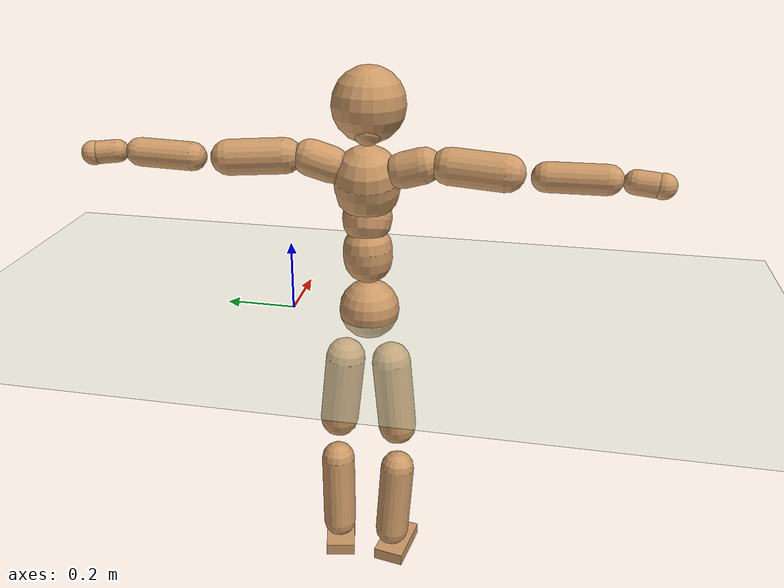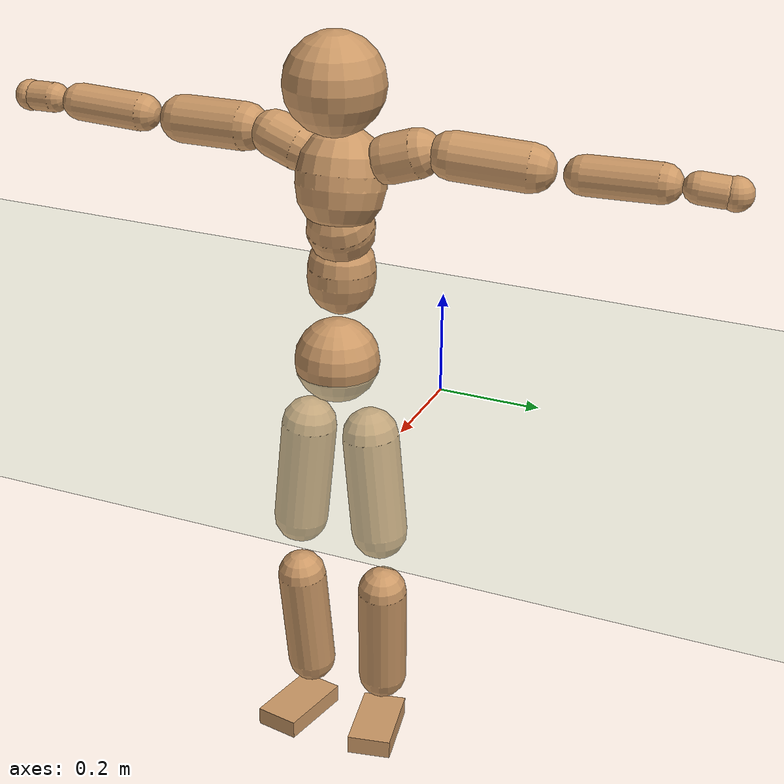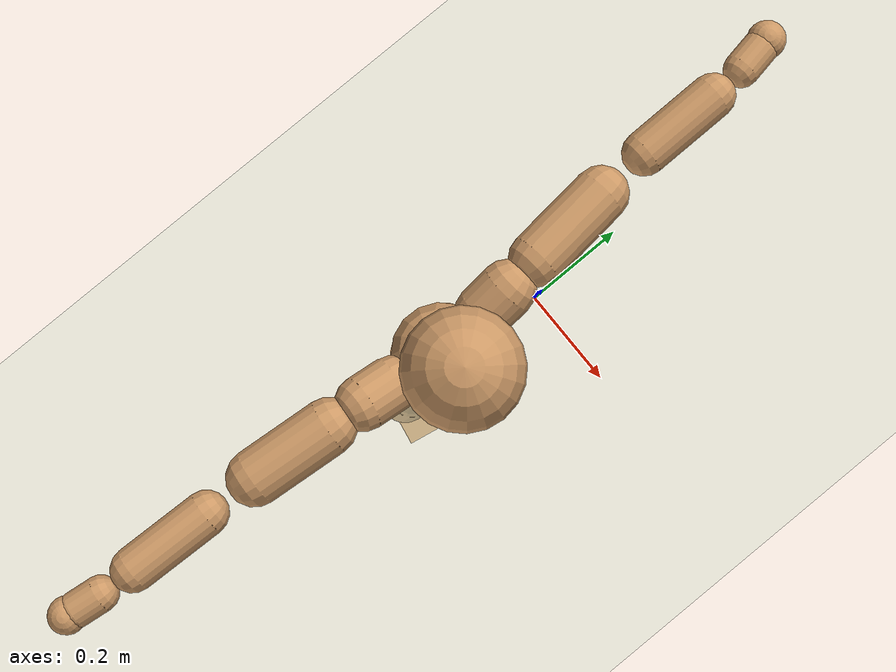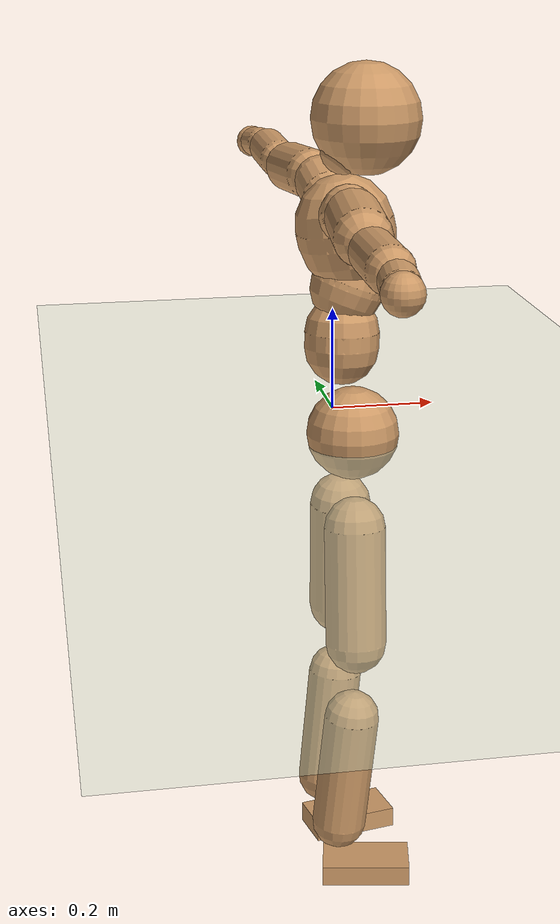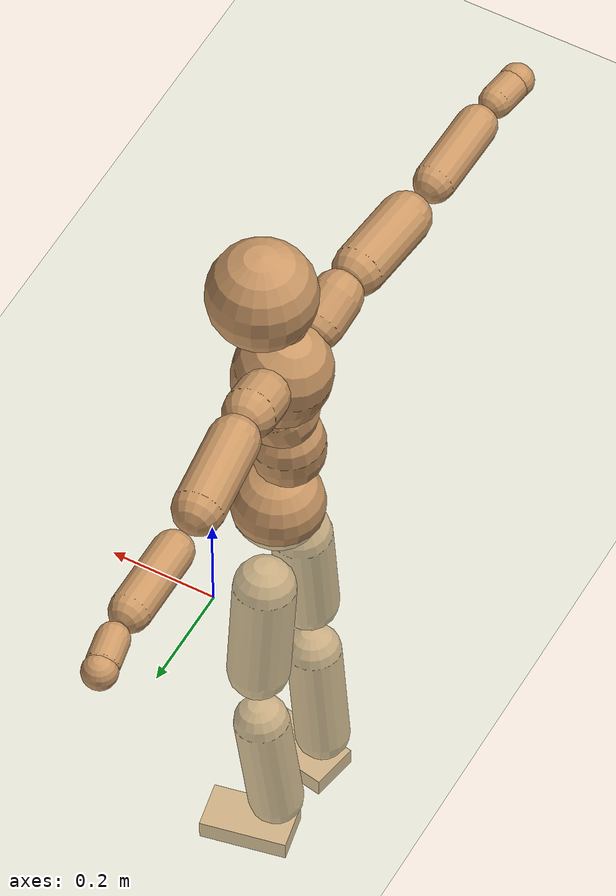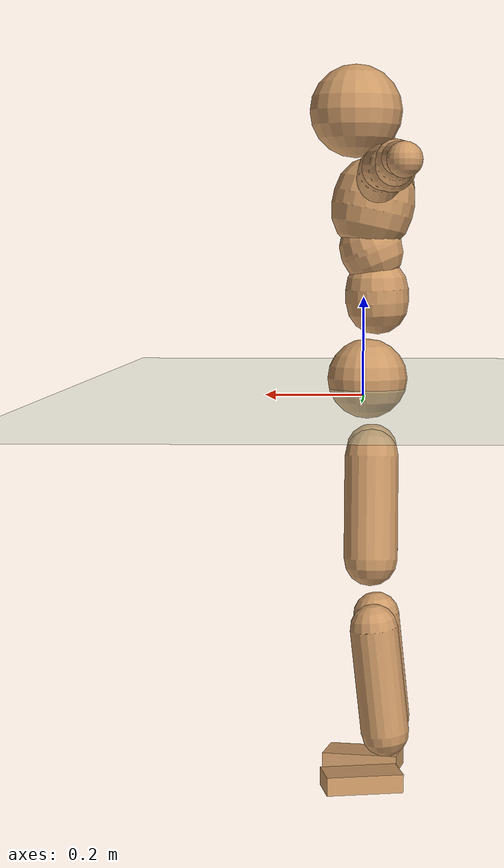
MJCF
<mujoco model="humanoid">
  <compiler coordinate="local"/>
  <default>
    <joint damping="0.0" armature="0.01" stiffness="0.0" limited="true"/>
    <geom conaffinity="1" condim="3" contype="7" margin="0.001" rgba="0.8 0.6 .4 1"/>
  </default>
  <asset>
    <texture type="skybox" builtin="gradient" rgb1=".4 .5 .6" rgb2="0 0 0" width="100" height="100"/>
    <texture builtin="flat" height="1278" mark="cross" markrgb="1 1 1" name="texgeom" random="0.01" rgb1="0.8 0.6 0.4" rgb2="0.8 0.6 0.4" type="cube" width="127"/>
    <texture builtin="checker" height="100" name="texplane" rgb1="0 0 0" rgb2="0.8 0.8 0.8" type="2d" width="100"/>
    <material name="MatPlane" reflectance="0.5" shininess="1" specular="1" texrepeat="60 60" texture="texplane"/>
    <material name="geom" texture="texgeom" texuniform="true"/>
  </asset>
  <worldbody>
    <light cutoff="100" diffuse="1 1 1" dir="-0 0 -1.3" directional="true" exponent="1" pos="0 0 1.3" specular=".1 .1 .1"/>
    <geom conaffinity="1" condim="3" name="floor" pos="0 0 0" rgba="0.8 0.9 0.8 1" size="100 100 .2" type="plane" material="MatPlane"/>
    <body name="Pelvis" pos="-0.0044 -0.2243 0.0196">
      <freejoint name="Pelvis"/>
      <geom type="sphere" contype="1" conaffinity="1" density="500" size="0.0860" pos="0.0000 0.0000 0.0000" name="Pelvis"/>
      <body name="L_Hip" pos="-0.0108 0.0613 -0.0878">
        <joint name="L_Hip_x" type="hinge" pos="0 0 0" axis="1 0 0" stiffness="800" damping="80" armature="0.02" range="-180.0000 180.0000"/>
        <joint name="L_Hip_y" type="hinge" pos="0 0 0" axis="0 1 0" stiffness="800" damping="80" armature="0.02" range="-180.0000 180.0000"/>
        <joint name="L_Hip_z" type="hinge" pos="0 0 0" axis="0 0 1" stiffness="800" damping="80" armature="0.02" range="-180.0000 180.0000"/>
        <geom type="capsule" contype="1" conaffinity="1" density="500" fromto="0.0006 0.0072 -0.0727 0.0022 0.0288 -0.2909" size="0.0577" name="L_Hip"/>
        <body name="L_Knee" pos="0.0028 0.036 -0.3636">
          <joint name="L_Knee_x" type="hinge" pos="0 0 0" axis="1 0 0" stiffness="800" damping="80" armature="0.02" range="-180.0000 180.0000"/>
          <joint name="L_Knee_y" type="hinge" pos="0 0 0" axis="0 1 0" stiffness="800" damping="80" armature="0.02" range="-180.0000 180.0000"/>
          <joint name="L_Knee_z" type="hinge" pos="0 0 0" axis="0 0 1" stiffness="800" damping="80" armature="0.02" range="-180.0000 180.0000"/>
          <geom type="capsule" contype="1" conaffinity="1" density="500" fromto="-0.0080 -0.0028 -0.0761 -0.0321 -0.0111 -0.3044" size="0.0515" name="L_Knee"/>
          <body name="L_Ankle" pos="-0.0401 -0.0139 -0.3805">
            <joint name="L_Ankle_x" type="hinge" pos="0 0 0" axis="1 0 0" stiffness="800" damping="80" armature="0.02" range="-180.0000 180.0000"/>
            <joint name="L_Ankle_y" type="hinge" pos="0 0 0" axis="0 1 0" stiffness="800" damping="80" armature="0.02" range="-180.0000 180.0000"/>
            <joint name="L_Ankle_z" type="hinge" pos="0 0 0" axis="0 0 1" stiffness="800" damping="80" armature="0.02" range="-180.0000 180.0000"/>
            <geom type="box" contype="1" conaffinity="1" density="500" pos="0.0581 0.0116 -0.0264" size="0.0828 0.0456 0.0198" quat="0.9951 0.0000 0.0000 0.0984" name="L_Ankle"/>
            <body name="L_Toe" pos="0.1162 0.0232 -0.0527">
              <joint name="L_Toe_x" type="hinge" pos="0 0 0" axis="1 0 0" stiffness="500" damping="50" armature="0.02" range="-180.0000 180.0000"/>
              <joint name="L_Toe_y" type="hinge" pos="0 0 0" axis="0 1 0" stiffness="500" damping="50" armature="0.02" range="-180.0000 180.0000"/>
              <joint name="L_Toe_z" type="hinge" pos="0 0 0" axis="0 0 1" stiffness="500" damping="50" armature="0.02" range="-180.0000 180.0000"/>
              <geom type="box" contype="1" conaffinity="1" density="500" pos="0.0000 0.0000 0.0258" size="0.0009 0.0023 0.001" quat="0.9945 0.0000 0.0000 0.1049" name="L_Toe"/>
            </body>
          </body>
        </body>
      </body>
      <body name="R_Hip" pos="-0.0085 -0.0603 -0.0863">
        <joint name="R_Hip_x" type="hinge" pos="0 0 0" axis="1 0 0" stiffness="800" damping="80" armature="0.02" range="-180.0000 180.0000"/>
        <joint name="R_Hip_y" type="hinge" pos="0 0 0" axis="0 1 0" stiffness="800" damping="80" armature="0.02" range="-180.0000 180.0000"/>
        <joint name="R_Hip_z" type="hinge" pos="0 0 0" axis="0 0 1" stiffness="800" damping="80" armature="0.02" range="-180.0000 180.0000"/>
        <geom type="capsule" contype="1" conaffinity="1" density="500" fromto="-0.0005 -0.0076 -0.0745 -0.0022 -0.0305 -0.2979" size="0.0567" name="R_Hip"/>
        <body name="R_Knee" pos="-0.0027 -0.0381 -0.3724">
          <joint name="R_Knee_x" type="hinge" pos="0 0 0" axis="1 0 0" stiffness="800" damping="80" armature="0.02" range="-180.0000 180.0000"/>
          <joint name="R_Knee_y" type="hinge" pos="0 0 0" axis="0 1 0" stiffness="800" damping="80" armature="0.02" range="-180.0000 180.0000"/>
          <joint name="R_Knee_z" type="hinge" pos="0 0 0" axis="0 0 1" stiffness="800" damping="80" armature="0.02" range="-180.0000 180.0000"/>
          <geom type="capsule" contype="1" conaffinity="1" density="500" fromto="-0.0078 0.0032 -0.0759 -0.0310 0.0129 -0.3037" size="0.0515" name="R_Knee"/>
          <body name="R_Ankle" pos="-0.0388 0.0161 -0.3796">
            <joint name="R_Ankle_x" type="hinge" pos="0 0 0" axis="1 0 0" stiffness="800" damping="80" armature="0.02" range="-180.0000 180.0000"/>
            <joint name="R_Ankle_y" type="hinge" pos="0 0 0" axis="0 1 0" stiffness="800" damping="80" armature="0.02" range="-180.0000 180.0000"/>
            <joint name="R_Ankle_z" type="hinge" pos="0 0 0" axis="0 0 1" stiffness="800" damping="80" armature="0.02" range="-180.0000 180.0000"/>
            <geom type="box" contype="1" conaffinity="1" density="500" pos="0.0598 -0.0110 -0.0225" size="0.0836 0.0467 0.0193" quat="0.9959 0.0000 0.0000 -0.0907" name="R_Ankle"/>
            <body name="R_Toe" pos="0.1195 -0.022 -0.0449">
              <joint name="R_Toe_x" type="hinge" pos="0 0 0" axis="1 0 0" stiffness="500" damping="50" armature="0.02" range="-180.0000 180.0000"/>
              <joint name="R_Toe_y" type="hinge" pos="0 0 0" axis="0 1 0" stiffness="500" damping="50" armature="0.02" range="-180.0000 180.0000"/>
              <joint name="R_Toe_z" type="hinge" pos="0 0 0" axis="0 0 1" stiffness="500" damping="50" armature="0.02" range="-180.0000 180.0000"/>
              <geom type="box" contype="1" conaffinity="1" density="500" pos="0.0000 0.0000 0.0233" size="0.0009 0.0023 0.001" quat="0.9967 0.0000 0.0000 -0.0813" name="R_Toe"/>
            </body>
          </body>
        </body>
      </body>
      <body name="Torso" pos="-0.0221 -0.0028 0.1061">
        <joint name="Torso_x" type="hinge" pos="0 0 0" axis="1 0 0" stiffness="1000" damping="100" armature="0.02" range="-180.0000 180.0000"/>
        <joint name="Torso_y" type="hinge" pos="0 0 0" axis="0 1 0" stiffness="1000" damping="100" armature="0.02" range="-180.0000 180.0000"/>
        <joint name="Torso_z" type="hinge" pos="0 0 0" axis="0 0 1" stiffness="1000" damping="100" armature="0.02" range="-180.0000 180.0000"/>
        <geom type="capsule" contype="1" conaffinity="1" density="500" fromto="0.0020 0.0042 0.0864 0.0013 0.0028 0.0576" size="0.0682" name="Torso"/>
        <body name="Spine" pos="0.0033 0.007 0.1441">
          <joint name="Spine_x" type="hinge" pos="0 0 0" axis="1 0 0" stiffness="1000" damping="100" armature="0.02" range="-180.0000 180.0000"/>
          <joint name="Spine_y" type="hinge" pos="0 0 0" axis="0 1 0" stiffness="1000" damping="100" armature="0.02" range="-180.0000 180.0000"/>
          <joint name="Spine_z" type="hinge" pos="0 0 0" axis="0 0 1" stiffness="1000" damping="100" armature="0.02" range="-180.0000 180.0000"/>
          <geom type="capsule" contype="1" conaffinity="1" density="500" fromto="0.0129 0.0011 0.0322 0.0086 0.0007 0.0215" size="0.0676" name="Spine"/>
          <body name="Chest" pos="0.0214 0.0019 0.0537">
            <joint name="Chest_x" type="hinge" pos="0 0 0" axis="1 0 0" stiffness="1000" damping="100" armature="0.02" range="-180.0000 180.0000"/>
            <joint name="Chest_y" type="hinge" pos="0 0 0" axis="0 1 0" stiffness="1000" damping="100" armature="0.02" range="-180.0000 180.0000"/>
            <joint name="Chest_z" type="hinge" pos="0 0 0" axis="0 0 1" stiffness="1000" damping="100" armature="0.02" range="-180.0000 180.0000"/>
            <geom type="capsule" contype="1" conaffinity="1" density="500" fromto="-0.0179 -0.0015 0.0842 -0.0119 -0.0010 0.0561" size="0.0888" name="Chest"/>
            <body name="Neck" pos="-0.0303 -0.0045 0.1992">
              <joint name="Neck_x" type="hinge" pos="0 0 0" axis="1 0 0" stiffness="500" damping="50" armature="0.02" range="-180.0000 180.0000"/>
              <joint name="Neck_y" type="hinge" pos="0 0 0" axis="0 1 0" stiffness="500" damping="50" armature="0.02" range="-180.0000 180.0000"/>
              <joint name="Neck_z" type="hinge" pos="0 0 0" axis="0 0 1" stiffness="500" damping="50" armature="0.02" range="-180.0000 180.0000"/>
              <geom type="capsule" contype="1" conaffinity="1" density="500" fromto="0.0104 0.0014 0.0135 0.0415 0.0056 0.0540" size="0.0419" name="Neck"/>
              <body name="Head" pos="0.0519 0.0069 0.0675">
                <joint name="Head_x" type="hinge" pos="0 0 0" axis="1 0 0" stiffness="500" damping="50" armature="0.02" range="-180.0000 180.0000"/>
                <joint name="Head_y" type="hinge" pos="0 0 0" axis="0 1 0" stiffness="500" damping="50" armature="0.02" range="-180.0000 180.0000"/>
                <joint name="Head_z" type="hinge" pos="0 0 0" axis="0 0 1" stiffness="500" damping="50" armature="0.02" range="-180.0000 180.0000"/>
                <geom type="sphere" contype="1" conaffinity="1" density="500" size="0.0991" pos="0.0000 0.0000 0.0000" name="Head"/>
              </body>
            </body>
            <body name="L_Thorax" pos="-0.0272 0.0746 0.1126">
              <joint name="L_Thorax_x" type="hinge" pos="0 0 0" axis="1 0 0" stiffness="500" damping="50" armature="0.02" range="-180.0000 180.0000"/>
              <joint name="L_Thorax_y" type="hinge" pos="0 0 0" axis="0 1 0" stiffness="500" damping="50" armature="0.02" range="-180.0000 180.0000"/>
              <joint name="L_Thorax_z" type="hinge" pos="0 0 0" axis="0 0 1" stiffness="500" damping="50" armature="0.02" range="-180.0000 180.0000"/>
              <geom type="capsule" contype="1" conaffinity="1" density="500" fromto="-0.0016 0.0179 0.0058 -0.0065 0.0716 0.0230" size="0.0486" name="L_Thorax"/>
              <body name="L_Shoulder" pos="-0.0081 0.0894 0.0288">
                <joint name="L_Shoulder_x" type="hinge" pos="0 0 0" axis="1 0 0" stiffness="500" damping="50" armature="0.02" range="-720.0000 720.0000"/>
                <joint name="L_Shoulder_y" type="hinge" pos="0 0 0" axis="0 1 0" stiffness="500" damping="50" armature="0.02" range="-720.0000 720.0000"/>
                <joint name="L_Shoulder_z" type="hinge" pos="0 0 0" axis="0 0 1" stiffness="500" damping="50" armature="0.02" range="-720.0000 720.0000"/>
                <geom type="capsule" contype="1" conaffinity="1" density="500" fromto="-0.0053 0.0499 -0.0028 -0.0212 0.1995 -0.0110" size="0.0473" name="L_Shoulder"/>
                <body name="L_Elbow" pos="-0.0265 0.2493 -0.0138">
                  <joint name="L_Elbow_x" type="hinge" pos="0 0 0" axis="1 0 0" stiffness="500" damping="50" armature="0.02" range="-720.0000 720.0000"/>
                  <joint name="L_Elbow_y" type="hinge" pos="0 0 0" axis="0 1 0" stiffness="500" damping="50" armature="0.02" range="-720.0000 720.0000"/>
                  <joint name="L_Elbow_z" type="hinge" pos="0 0 0" axis="0 0 1" stiffness="500" damping="50" armature="0.02" range="-720.0000 720.0000"/>
                  <geom type="capsule" contype="1" conaffinity="1" density="500" fromto="-0.0005 0.0485 0.0016 -0.0019 0.1942 0.0065" size="0.0381" name="L_Elbow"/>
                  <body name="L_Wrist" pos="-0.0024 0.2427 0.0081">
                    <joint name="L_Wrist_x" type="hinge" pos="0 0 0" axis="1 0 0" stiffness="300" damping="30" armature="0.02" range="-180.0000 180.0000"/>
                    <joint name="L_Wrist_y" type="hinge" pos="0 0 0" axis="0 1 0" stiffness="300" damping="30" armature="0.02" range="-180.0000 180.0000"/>
                    <joint name="L_Wrist_z" type="hinge" pos="0 0 0" axis="0 0 1" stiffness="300" damping="30" armature="0.02" range="-180.0000 180.0000"/>
                    <geom type="capsule" contype="1" conaffinity="1" density="500" fromto="-0.0030 0.0162 -0.0015 -0.0118 0.0648 -0.0059" size="0.0305" name="L_Wrist"/>
                    <body name="L_Hand" pos="-0.0148 0.081 -0.0074">
                      <joint name="L_Hand_x" type="hinge" pos="0 0 0" axis="1 0 0" stiffness="300" damping="30" armature="0.02" range="-180.0000 180.0000"/>
                      <joint name="L_Hand_y" type="hinge" pos="0 0 0" axis="0 1 0" stiffness="300" damping="30" armature="0.02" range="-180.0000 180.0000"/>
                      <joint name="L_Hand_z" type="hinge" pos="0 0 0" axis="0 0 1" stiffness="300" damping="30" armature="0.02" range="-180.0000 180.0000"/>
                      <geom type="sphere" contype="1" conaffinity="1" density="500" size="0.0324" pos="0.0000 0.0000 0.0000" name="L_Hand"/>
                    </body>
                  </body>
                </body>
              </body>
            </body>
            <body name="R_Thorax" pos="-0.0319 -0.0777 0.109">
              <joint name="R_Thorax_x" type="hinge" pos="0 0 0" axis="1 0 0" stiffness="500" damping="50" armature="0.02" range="-180.0000 180.0000"/>
              <joint name="R_Thorax_y" type="hinge" pos="0 0 0" axis="0 1 0" stiffness="500" damping="50" armature="0.02" range="-180.0000 180.0000"/>
              <joint name="R_Thorax_z" type="hinge" pos="0 0 0" axis="0 0 1" stiffness="500" damping="50" armature="0.02" range="-180.0000 180.0000"/>
              <geom type="capsule" contype="1" conaffinity="1" density="500" fromto="-0.0018 -0.0188 0.0059 -0.0073 -0.0751 0.0238" size="0.0472" name="R_Thorax"/>
              <body name="R_Shoulder" pos="-0.0091 -0.0938 0.0297">
                <joint name="R_Shoulder_x" type="hinge" pos="0 0 0" axis="1 0 0" stiffness="500" damping="50" armature="0.02" range="-720.0000 720.0000"/>
                <joint name="R_Shoulder_y" type="hinge" pos="0 0 0" axis="0 1 0" stiffness="500" damping="50" armature="0.02" range="-720.0000 720.0000"/>
                <joint name="R_Shoulder_z" type="hinge" pos="0 0 0" axis="0 0 1" stiffness="500" damping="50" armature="0.02" range="-720.0000 720.0000"/>
                <geom type="capsule" contype="1" conaffinity="1" density="500" fromto="-0.0041 -0.0480 -0.0022 -0.0163 -0.1920 -0.0086" size="0.0482" name="R_Shoulder"/>
                <body name="R_Elbow" pos="-0.0204 -0.24 -0.0108">
                  <joint name="R_Elbow_x" type="hinge" pos="0 0 0" axis="1 0 0" stiffness="500" damping="50" armature="0.02" range="-720.0000 720.0000"/>
                  <joint name="R_Elbow_y" type="hinge" pos="0 0 0" axis="0 1 0" stiffness="500" damping="50" armature="0.02" range="-720.0000 720.0000"/>
                  <joint name="R_Elbow_z" type="hinge" pos="0 0 0" axis="0 0 1" stiffness="500" damping="50" armature="0.02" range="-720.0000 720.0000"/>
                  <geom type="capsule" contype="1" conaffinity="1" density="500" fromto="-0.0015 -0.0490 0.0008 -0.0060 -0.1962 0.0034" size="0.0381" name="R_Elbow"/>
                  <body name="R_Wrist" pos="-0.0075 -0.2452 0.0042">
                    <joint name="R_Wrist_x" type="hinge" pos="0 0 0" axis="1 0 0" stiffness="300" damping="30" armature="0.02" range="-180.0000 180.0000"/>
                    <joint name="R_Wrist_y" type="hinge" pos="0 0 0" axis="0 1 0" stiffness="300" damping="30" armature="0.02" range="-180.0000 180.0000"/>
                    <joint name="R_Wrist_z" type="hinge" pos="0 0 0" axis="0 0 1" stiffness="300" damping="30" armature="0.02" range="-180.0000 180.0000"/>
                    <geom type="capsule" contype="1" conaffinity="1" density="500" fromto="-0.0019 -0.0160 -0.0011 -0.0076 -0.0640 -0.0043" size="0.0308" name="R_Wrist"/>
                    <body name="R_Hand" pos="-0.0095 -0.08 -0.0054">
                      <joint name="R_Hand_x" type="hinge" pos="0 0 0" axis="1 0 0" stiffness="300" damping="30" armature="0.02" range="-180.0000 180.0000"/>
                      <joint name="R_Hand_y" type="hinge" pos="0 0 0" axis="0 1 0" stiffness="300" damping="30" armature="0.02" range="-180.0000 180.0000"/>
                      <joint name="R_Hand_z" type="hinge" pos="0 0 0" axis="0 0 1" stiffness="300" damping="30" armature="0.02" range="-180.0000 180.0000"/>
                      <geom type="sphere" contype="1" conaffinity="1" density="500" size="0.0321" pos="0.0000 0.0000 0.0000" name="R_Hand"/>
                    </body>
                  </body>
                </body>
              </body>
            </body>
          </body>
        </body>
      </body>
    </body>
  </worldbody>
  <actuator>
    <motor name="L_Hip_x" joint="L_Hip_x" gear="500"/>
    <motor name="L_Hip_y" joint="L_Hip_y" gear="500"/>
    <motor name="L_Hip_z" joint="L_Hip_z" gear="500"/>
    <motor name="L_Knee_x" joint="L_Knee_x" gear="500"/>
    <motor name="L_Knee_y" joint="L_Knee_y" gear="500"/>
    <motor name="L_Knee_z" joint="L_Knee_z" gear="500"/>
    <motor name="L_Ankle_x" joint="L_Ankle_x" gear="500"/>
    <motor name="L_Ankle_y" joint="L_Ankle_y" gear="500"/>
    <motor name="L_Ankle_z" joint="L_Ankle_z" gear="500"/>
    <motor name="L_Toe_x" joint="L_Toe_x" gear="500"/>
    <motor name="L_Toe_y" joint="L_Toe_y" gear="500"/>
    <motor name="L_Toe_z" joint="L_Toe_z" gear="500"/>
    <motor name="R_Hip_x" joint="R_Hip_x" gear="500"/>
    <motor name="R_Hip_y" joint="R_Hip_y" gear="500"/>
    <motor name="R_Hip_z" joint="R_Hip_z" gear="500"/>
    <motor name="R_Knee_x" joint="R_Knee_x" gear="500"/>
    <motor name="R_Knee_y" joint="R_Knee_y" gear="500"/>
    <motor name="R_Knee_z" joint="R_Knee_z" gear="500"/>
    <motor name="R_Ankle_x" joint="R_Ankle_x" gear="500"/>
    <motor name="R_Ankle_y" joint="R_Ankle_y" gear="500"/>
    <motor name="R_Ankle_z" joint="R_Ankle_z" gear="500"/>
    <motor name="R_Toe_x" joint="R_Toe_x" gear="500"/>
    <motor name="R_Toe_y" joint="R_Toe_y" gear="500"/>
    <motor name="R_Toe_z" joint="R_Toe_z" gear="500"/>
    <motor name="Torso_x" joint="Torso_x" gear="500"/>
    <motor name="Torso_y" joint="Torso_y" gear="500"/>
    <motor name="Torso_z" joint="Torso_z" gear="500"/>
    <motor name="Spine_x" joint="Spine_x" gear="500"/>
    <motor name="Spine_y" joint="Spine_y" gear="500"/>
    <motor name="Spine_z" joint="Spine_z" gear="500"/>
    <motor name="Chest_x" joint="Chest_x" gear="500"/>
    <motor name="Chest_y" joint="Chest_y" gear="500"/>
    <motor name="Chest_z" joint="Chest_z" gear="500"/>
    <motor name="Neck_x" joint="Neck_x" gear="500"/>
    <motor name="Neck_y" joint="Neck_y" gear="500"/>
    <motor name="Neck_z" joint="Neck_z" gear="500"/>
    <motor name="Head_x" joint="Head_x" gear="500"/>
    <motor name="Head_y" joint="Head_y" gear="500"/>
    <motor name="Head_z" joint="Head_z" gear="500"/>
    <motor name="L_Thorax_x" joint="L_Thorax_x" gear="500"/>
    <motor name="L_Thorax_y" joint="L_Thorax_y" gear="500"/>
    <motor name="L_Thorax_z" joint="L_Thorax_z" gear="500"/>
    <motor name="L_Shoulder_x" joint="L_Shoulder_x" gear="500"/>
    <motor name="L_Shoulder_y" joint="L_Shoulder_y" gear="500"/>
    <motor name="L_Shoulder_z" joint="L_Shoulder_z" gear="500"/>
    <motor name="L_Elbow_x" joint="L_Elbow_x" gear="500"/>
    <motor name="L_Elbow_y" joint="L_Elbow_y" gear="500"/>
    <motor name="L_Elbow_z" joint="L_Elbow_z" gear="500"/>
    <motor name="L_Wrist_x" joint="L_Wrist_x" gear="500"/>
    <motor name="L_Wrist_y" joint="L_Wrist_y" gear="500"/>
    <motor name="L_Wrist_z" joint="L_Wrist_z" gear="500"/>
    <motor name="L_Hand_x" joint="L_Hand_x" gear="500"/>
    <motor name="L_Hand_y" joint="L_Hand_y" gear="500"/>
    <motor name="L_Hand_z" joint="L_Hand_z" gear="500"/>
    <motor name="R_Thorax_x" joint="R_Thorax_x" gear="500"/>
    <motor name="R_Thorax_y" joint="R_Thorax_y" gear="500"/>
    <motor name="R_Thorax_z" joint="R_Thorax_z" gear="500"/>
    <motor name="R_Shoulder_x" joint="R_Shoulder_x" gear="500"/>
    <motor name="R_Shoulder_y" joint="R_Shoulder_y" gear="500"/>
    <motor name="R_Shoulder_z" joint="R_Shoulder_z" gear="500"/>
    <motor name="R_Elbow_x" joint="R_Elbow_x" gear="500"/>
    <motor name="R_Elbow_y" joint="R_Elbow_y" gear="500"/>
    <motor name="R_Elbow_z" joint="R_Elbow_z" gear="500"/>
    <motor name="R_Wrist_x" joint="R_Wrist_x" gear="500"/>
    <motor name="R_Wrist_y" joint="R_Wrist_y" gear="500"/>
    <motor name="R_Wrist_z" joint="R_Wrist_z" gear="500"/>
    <motor name="R_Hand_x" joint="R_Hand_x" gear="500"/>
    <motor name="R_Hand_y" joint="R_Hand_y" gear="500"/>
    <motor name="R_Hand_z" joint="R_Hand_z" gear="500"/>
  </actuator>
  <contact>
    <exclude body1="Torso" body2="Chest"/>
    <exclude body1="Head" body2="Chest"/>
    <exclude body1="R_Knee" body2="R_Toe"/>
    <exclude body1="R_Knee" body2="L_Ankle"/>
    <exclude body1="R_Knee" body2="L_Toe"/>
    <exclude body1="L_Knee" body2="L_Toe"/>
    <exclude body1="L_Knee" body2="R_Ankle"/>
    <exclude body1="L_Knee" body2="R_Toe"/>
    <exclude body1="L_Shoulder" body2="Chest"/>
    <exclude body1="R_Shoulder" body2="Chest"/>
  </contact>
  <sensor/>
  <size njmax="700" nconmax="700"/>
</mujoco>
